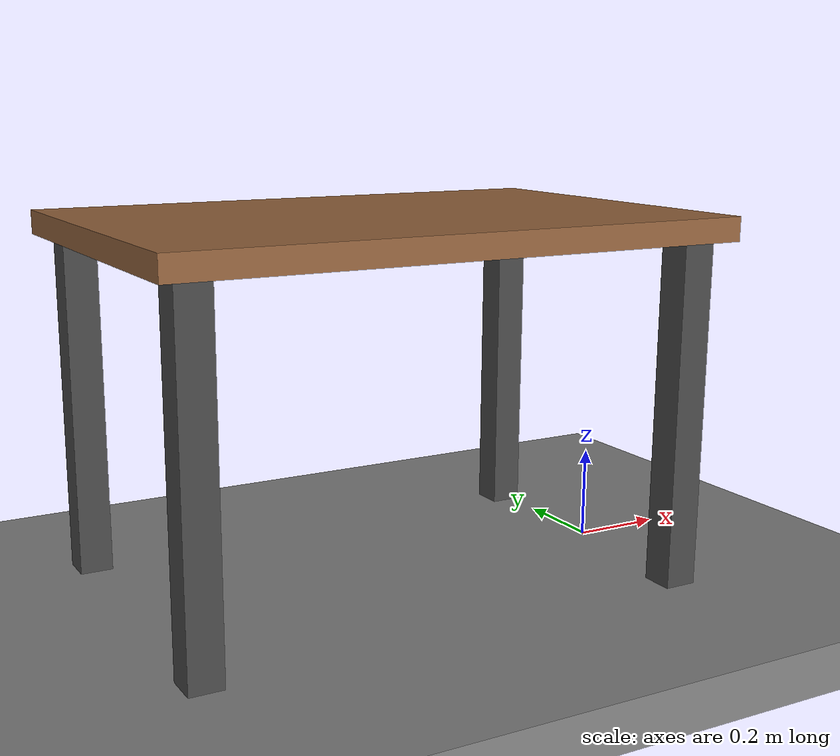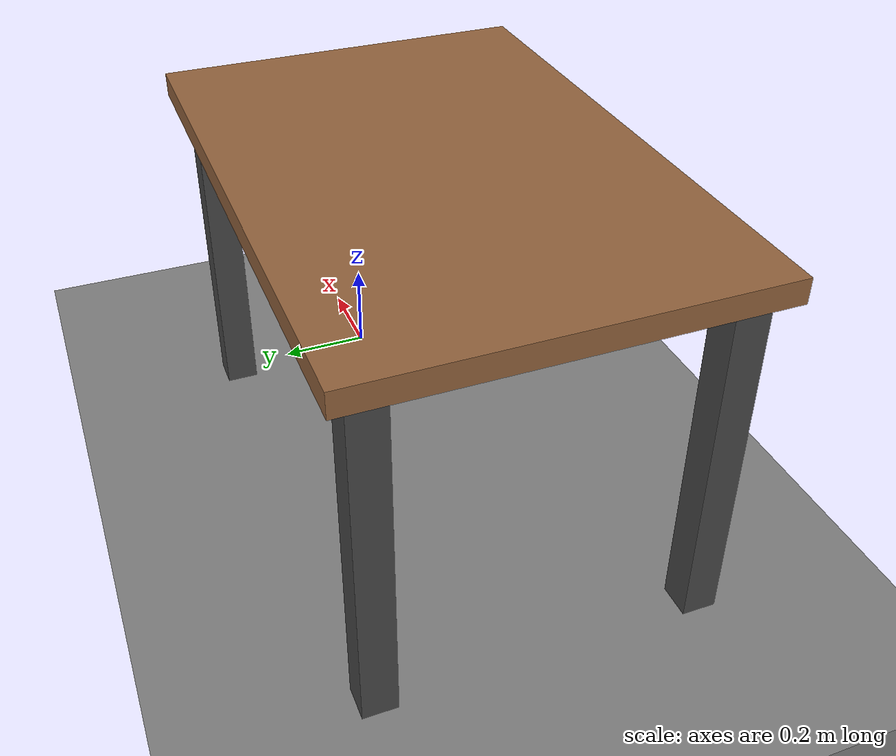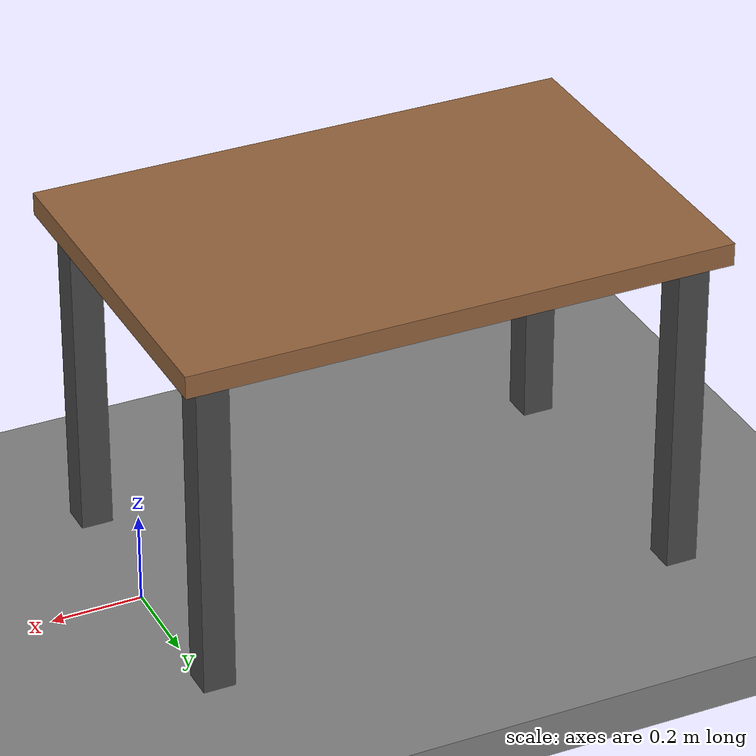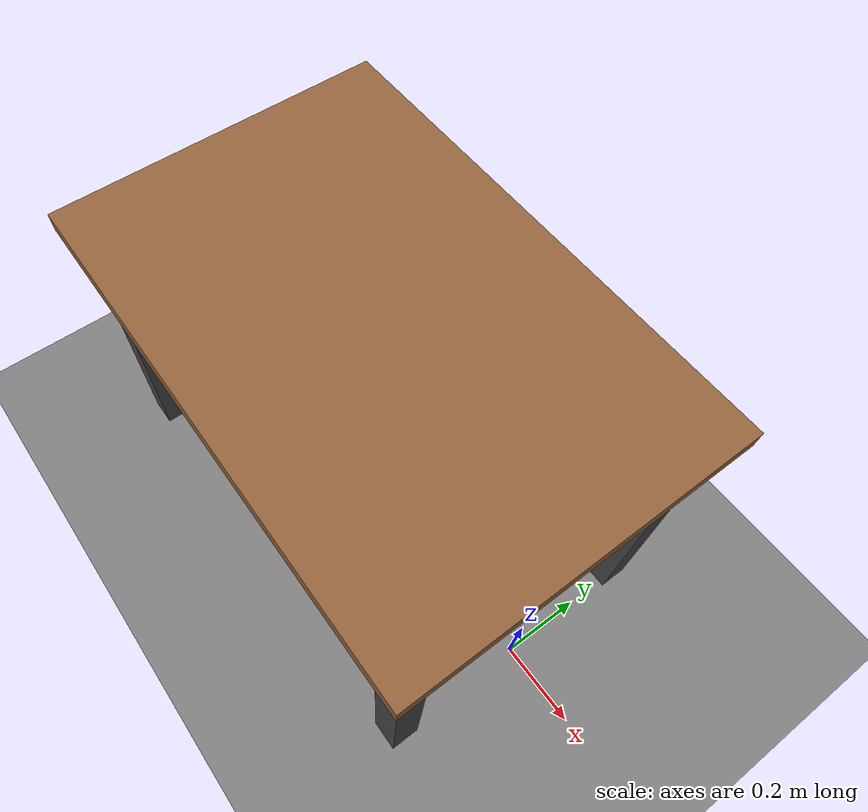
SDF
<?xml version="1.0" ?>
<sdf version="1.8">
  <world name="empty">
    <gravity>0 0 -9.8</gravity>

    <plugin filename="gz-sim-physics-system" name="gz::sim::systems::Physics"/>
    <plugin filename="gz-sim-user-commands-system" name="gz::sim::systems::UserCommands"/>
    <plugin filename="gz-sim-scene-broadcaster-system" name="gz::sim::systems::SceneBroadcaster"/>

    <plugin filename="gz-sim-sensors-system" name="gz::sim::systems::Sensors">
      <render_engine>ogre2</render_engine>
    </plugin>

    <light type="directional" name="sun">
      <cast_shadows>true</cast_shadows>
      <pose>0 0 10 0 0 0</pose>
      <diffuse>0.8 0.8 0.8 1</diffuse>
      <specular>0.2 0.2 0.2 1</specular>
      <attenuation>
        <range>1000</range>
        <constant>0.9</constant>
        <linear>0.01</linear>
        <quadratic>0.001</quadratic>
      </attenuation>
      <direction>-0.5 0.1 -0.9</direction>
    </light>

    <model name="ground_plane">
      <static>true</static>
      <pose>0 0 -0.05 0 0 0</pose>
      <link name="link">
        <collision name="collision">
          <geometry>
            <box>
              <size>100 100 0.1</size>
            </box>
          </geometry>
        </collision>
        <visual name="visual">
          <geometry>
            <box>
              <size>100 100 0.1</size>
            </box>
          </geometry>
          <material>
            <ambient>0.3 0.3 0.3 1</ambient>
            <diffuse>0.5 0.5 0.5 1</diffuse>
            <specular>0.1 0.1 0.1 1</specular>
          </material>
        </visual>
      </link>
    </model>

    <model name="workbench_table">
      <static>true</static>
      <pose>-0.55 0 0 0 0 0</pose>
      <link name="table_link">
        <collision name="top_collision">
          <pose>0 0 0.75 0 0 0</pose>
          <geometry>
            <box>
              <size>1.2 0.8 0.05</size>
            </box>
          </geometry>
        </collision>
        <visual name="top_visual">
          <pose>0 0 0.75 0 0 0</pose>
          <geometry>
            <box>
              <size>1.2 0.8 0.05</size>
            </box>
          </geometry>
          <material>
            <ambient>0.48 0.32 0.20 1</ambient>
            <diffuse>0.58 0.39 0.24 1</diffuse>
            <specular>0.12 0.12 0.12 1</specular>
          </material>
        </visual>

        <collision name="leg_fl_collision">
          <pose>0.53 0.33 0.375 0 0 0</pose>
          <geometry><box><size>0.07 0.07 0.75</size></box></geometry>
        </collision>
        <collision name="leg_fr_collision">
          <pose>0.53 -0.33 0.375 0 0 0</pose>
          <geometry><box><size>0.07 0.07 0.75</size></box></geometry>
        </collision>
        <collision name="leg_rl_collision">
          <pose>-0.53 0.33 0.375 0 0 0</pose>
          <geometry><box><size>0.07 0.07 0.75</size></box></geometry>
        </collision>
        <collision name="leg_rr_collision">
          <pose>-0.53 -0.33 0.375 0 0 0</pose>
          <geometry><box><size>0.07 0.07 0.75</size></box></geometry>
        </collision>

        <visual name="leg_fl_visual">
          <pose>0.53 0.33 0.375 0 0 0</pose>
          <geometry><box><size>0.07 0.07 0.75</size></box></geometry>
          <material><ambient>0.2 0.2 0.2 1</ambient><diffuse>0.28 0.28 0.28 1</diffuse></material>
        </visual>
        <visual name="leg_fr_visual">
          <pose>0.53 -0.33 0.375 0 0 0</pose>
          <geometry><box><size>0.07 0.07 0.75</size></box></geometry>
          <material><ambient>0.2 0.2 0.2 1</ambient><diffuse>0.28 0.28 0.28 1</diffuse></material>
        </visual>
        <visual name="leg_rl_visual">
          <pose>-0.53 0.33 0.375 0 0 0</pose>
          <geometry><box><size>0.07 0.07 0.75</size></box></geometry>
          <material><ambient>0.2 0.2 0.2 1</ambient><diffuse>0.28 0.28 0.28 1</diffuse></material>
        </visual>
        <visual name="leg_rr_visual">
          <pose>-0.53 -0.33 0.375 0 0 0</pose>
          <geometry><box><size>0.07 0.07 0.75</size></box></geometry>
          <material><ambient>0.2 0.2 0.2 1</ambient><diffuse>0.28 0.28 0.28 1</diffuse></material>
        </visual>
      </link>
    </model>
  </world>
</sdf>
